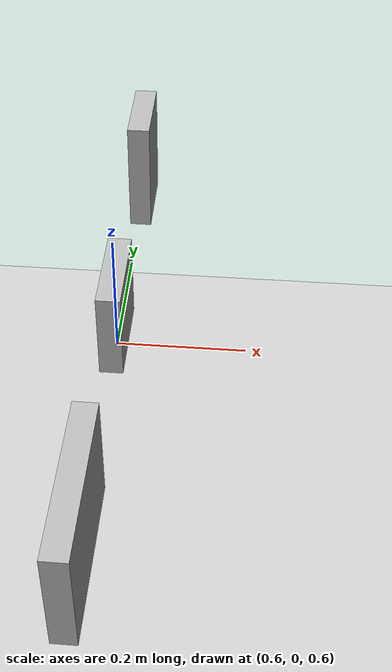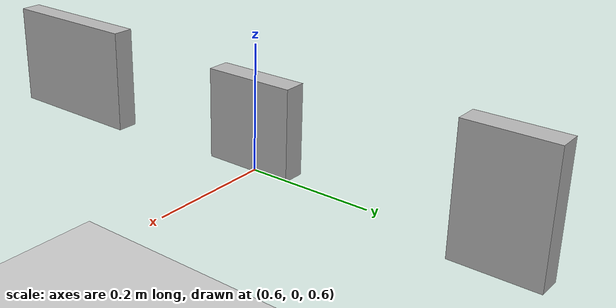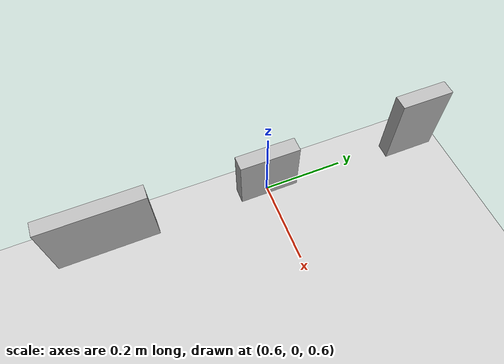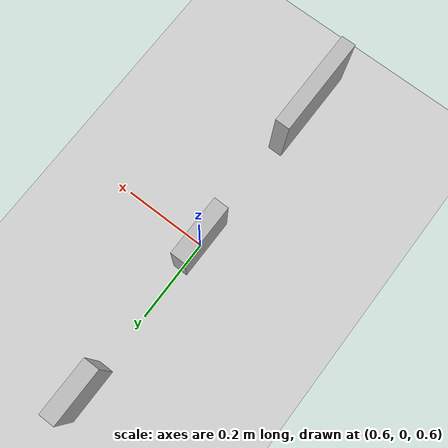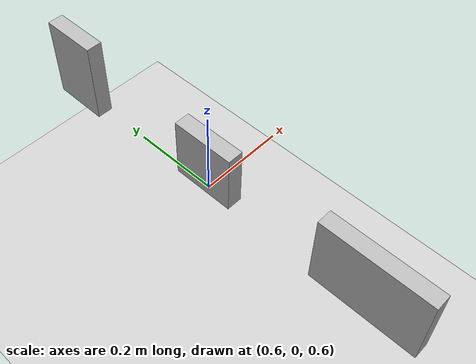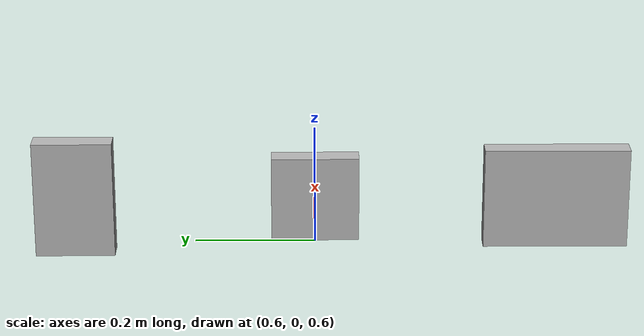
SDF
<sdf version="1.3">
 <world name="default">
  <model name="ground_plane">
   <static>1</static>
   <link name="link">
    <collision name="collision">
     <geometry>
      <plane><normal>0.000000 0.000000 1.000000</normal><size>100.000000 100.000000</size></plane>
     </geometry>
     <surface><friction><ode><mu>100.000000</mu><mu2>50.000000</mu2></ode></friction></surface>
    </collision>
    <visual name="visual">
     <cast_shadows>0</cast_shadows>
     <geometry>
      <plane><normal>0.000000 0.000000 1.000000</normal><size>100.000000 100.000000</size></plane>
     </geometry>
     <material>
      <script><uri>file://media/materials/scripts/gazebo.material</uri><name>Gazebo/Grey</name></script>
     </material>
    </visual>
    <velocity_decay><linear>0.000000</linear><angular>0.000000</angular></velocity_decay>
   </link>
  </model>
  <model name="corny">
   <pose>0.600000 0.000000 0.680000 0.000000 -1.570000 0.000000</pose>
   <static>0</static>
   <link name="link">
    <inertial>
     <mass>0.050000</mass>
     <inertia>
      <ixx>0.000580</ixx>
      <ixy>0.000000</ixy>
      <ixz>0.000000</ixz>
      <iyy>0.000580</iyy>
      <iyz>0.000000</iyz>
      <izz>0.000190</izz>
     </inertia>
    </inertial>
    <collision name="collision">
     <geometry><box><size>0.143000 0.145000 0.036000</size></box></geometry>
     <surface>
      <contact><ode><kp>1000000.000000</kp><kd>1.000000</kd></ode></contact>
      <friction><ode><mu>500.000000</mu><mu2>500.000000</mu2></ode></friction>
     </surface>
    </collision>
    <visual name="visual">
     <geometry><box><size>0.143000 0.145000 0.036000</size></box></geometry>
     <material>
      <script>
       <uri>model://corny/materials/scripts</uri>
       <uri>model://corny/materials/textures</uri>
       <name>Corny/Diffuse</name>
      </script>
     </material>
    </visual>
    <velocity_decay><linear>0.000000</linear><angular>0.000000</angular></velocity_decay>
   </link>
  </model>
  <model name="cafetfilter">
   <pose>0.600000 0.400000 0.680000 1.570000 -0.000000 1.570000</pose>
   <static>0</static>
   <link name="link">
    <inertial>
     <mass>0.050000</mass>
     <inertia>
      <ixx>0.000580</ixx>
      <ixy>0.000000</ixy>
      <ixz>0.000000</ixz>
      <iyy>0.000580</iyy>
      <iyz>0.000000</iyz>
      <izz>0.000190</izz>
     </inertia>
    </inertial>
    <collision name="collision">
     <geometry><box><size>0.132000 0.197000 0.037000</size></box></geometry>
     <surface>
      <contact><ode><kp>1000000.000000</kp><kd>1.000000</kd></ode></contact>
      <friction><ode><mu>500.000000</mu><mu2>500.000000</mu2></ode></friction>
     </surface>
    </collision>
    <visual name="visual">
     <geometry><box><size>0.132000 0.197000 0.037000</size></box></geometry>
     <material>
      <script>
       <uri>model://cafetfilter/materials/scripts</uri>
       <uri>model://cafetfilter/materials/textures</uri>
       <name>Cafetfilter/Diffuse</name>
      </script>
     </material>
    </visual>
    <velocity_decay><linear>0.000000</linear><angular>0.000000</angular></velocity_decay>
   </link>
  </model>
  <model name="dlink">
   <pose>0.600000 -0.400000 0.680000 -1.570000 0.000000 1.570000</pose>
   <static>0</static>
   <link name="link">
    <inertial>
     <mass>0.050000</mass>
     <inertia>
      <ixx>0.000580</ixx>
      <ixy>0.000000</ixy>
      <ixz>0.000000</ixz>
      <iyy>0.000580</iyy>
      <iyz>0.000000</iyz>
      <izz>0.000190</izz>
     </inertia>
    </inertial>
    <collision name="collision">
     <geometry><box><size>0.240000 0.169000 0.035000</size></box></geometry>
     <surface>
      <contact><ode><kp>1000000.000000</kp><kd>1.000000</kd></ode></contact>
      <friction><ode><mu>500.000000</mu><mu2>500.000000</mu2></ode></friction>
     </surface>
    </collision>
    <visual name="visual">
     <geometry><box><size>0.240000 0.169000 0.035000</size></box></geometry>
     <material>
      <script>
       <uri>model://dlink/materials/scripts</uri>
       <uri>model://dlink/materials/textures</uri>
       <name>Dlink/Diffuse</name>
      </script>
     </material>
    </visual>
    <velocity_decay><linear>0.000000</linear><angular>0.000000</angular></velocity_decay>
   </link>
  </model>
 </world>
</sdf>
